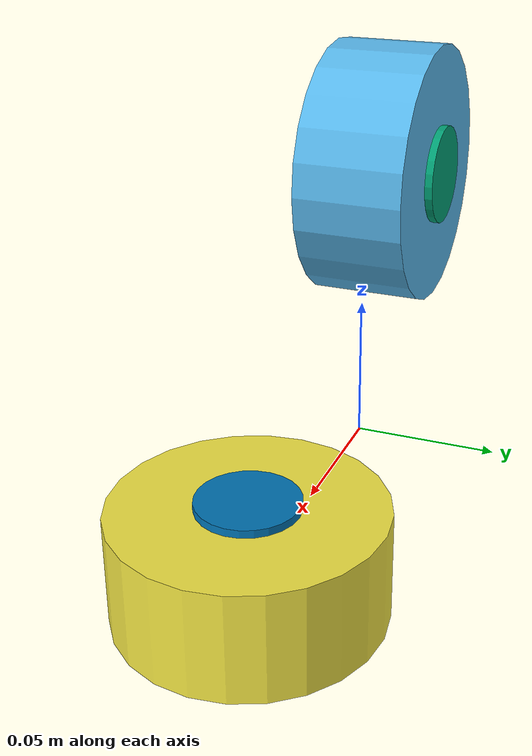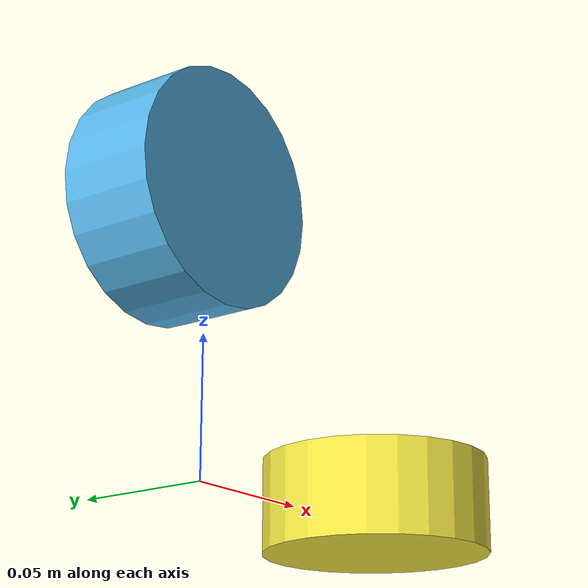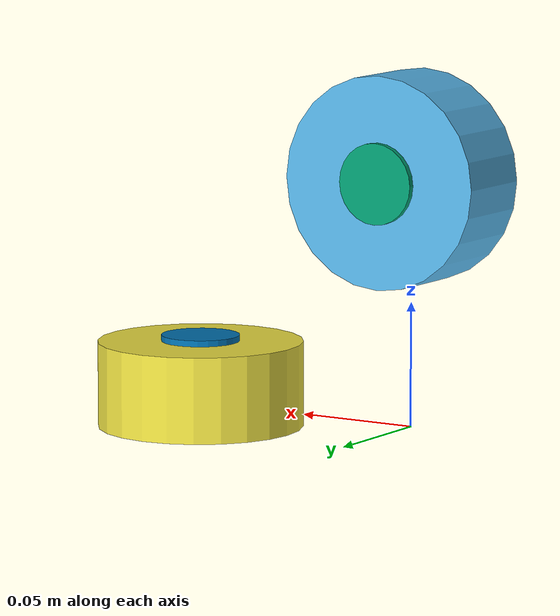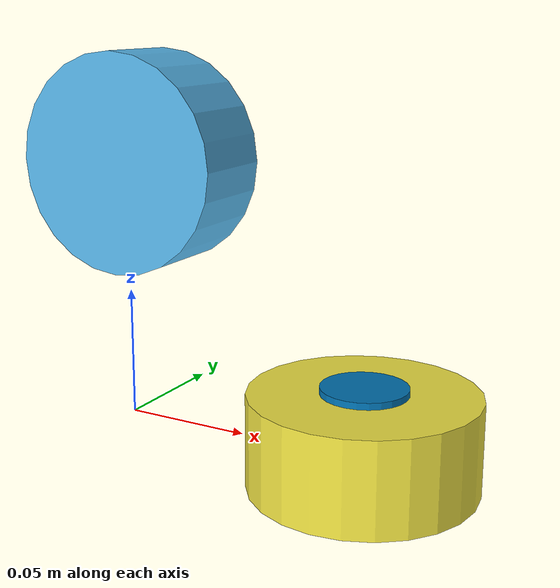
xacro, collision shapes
<?xml version="1.0"?>
<!--
MIT License
Copyright (c) 2024 Naoki Takahashi
-->
<robot xmlns:xacro="http://www.ros.org/wiki/xacro" name="cybergear_servo">
  <xacro:include filename="$(find quadro)/urdf/cybergear_servo.xacro"/>
  <link name="base_link">
  </link>
  <xacro:cybergear_servo name="quadro" parent="base_link">
    <origin rpy="0 0 0" xyz="0 0 0.1"/>
  </xacro:cybergear_servo>
</robot>

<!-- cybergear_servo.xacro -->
<!--
MIT License
Copyright (c) 2024 Naoki Takahashi
-->
<robot xmlns:xacro="http://www.ros.org/wiki/xacro">
  <xacro:macro name="cybergear_servo" params="name parent *origin">
    <joint name="${name}_FR1_base_joint" type="fixed">
      <origin rpy="${-pi/2} 0 0" xyz="0.0 0 0.1"/>
      <parent link="${parent}"/>
      <child link="${name}_FR1_link"/>
    </joint>
    <link name="${name}_FR1_link">
      <visual>
        <geometry>
          <mesh filename="package://quadro/meshes/cybergear_body.stl" scale="0.001 0.001 0.001"/>
        </geometry>
      </visual>
      <collision>
        <origin rpy="0 0 0" xyz="0 0 0.008"/>
        <geometry>
          <cylinder length="0.035" radius="0.042"/>
        </geometry>
      </collision>

    </link>
    <joint name="FR1" type="revolute">
      <origin rpy="0 0 0" xyz="0 0 0.028"/>
      <parent link="${name}_FR1_link"/>
      <child link="${name}_FR1_table_link"/>
      <axis xyz="0 0 1"/>
      <limit effort="12" velocity="30" lower="-12.565" upper="12.565"/>
    </joint>
    <link name="${name}_FR1_table_link">
      <visual>
        <origin rpy="0 0 0" xyz="0 0 -0.028"/>
        <geometry>
          <mesh filename="package://quadro/meshes/cybergear_table.stl" scale="0.001 0.001 0.001"/>
        </geometry>
      </visual>
      <collision>
        <origin rpy="0 0 0" xyz="0 0 -0.005"/>
        <geometry>
          <cylinder length="0.01" radius="0.016"/>
        </geometry>
      </collision>

    </link>

    <!-- SECOND LINK -->

    <joint name="${name}_FR2_base_joint" type="fixed">
      <origin rpy="0 0 0" xyz="0.1 0 0.0"/>
      <parent link="${parent}"/>
      <child link="${name}_FR2_link"/>
    </joint>
    <link name="${name}_FR2_link">
      <visual>
        <geometry>
          <mesh filename="package://quadro/meshes/cybergear_body.stl" scale="0.001 0.001 0.001"/>
        </geometry>
      </visual>
      <collision>
        <origin rpy="0 0 0" xyz="0 0 0.008"/>
        <geometry>
          <cylinder length="0.035" radius="0.042"/>
        </geometry>
      </collision>

    </link>
    <joint name="FR2" type="revolute">
      <origin rpy="0 0 0" xyz="0 0 0.028"/>
      <parent link="${name}_FR2_link"/>
      <child link="${name}_FR2_table_link"/>
      <axis xyz="0 0 1"/>
      <limit effort="12" velocity="30" lower="-12.565" upper="12.565"/>
    </joint>
    <link name="${name}_FR2_table_link">
      <visual>
        <origin rpy="0 0 0" xyz="0 0 -0.028"/>
        <geometry>
          <mesh filename="package://quadro/meshes/cybergear_table.stl" scale="0.001 0.001 0.001"/>
        </geometry>
      </visual>
      <collision>
        <origin rpy="0 0 0" xyz="0 0 -0.005"/>
        <geometry>
          <cylinder length="0.01" radius="0.016"/>
        </geometry>
      </collision>

    </link>

    <ros2_control name="CybergearActuators" type="actuator">
    <hardware>
      <plugin>quadro/CybergearActuator</plugin>
      <param name="can_interface">can0</param>
      <param name="timeout_sec">3.0</param>
      <param name="use_bus_time">false</param>
      <param name="interval_sec">0.5</param>
      <param name="device_id">127</param>
      <param name="primary_id">0</param>
      <param name="max_position">12.56637061</param>
      <param name="min_position">-12.56637061</param>
      <param name="max_velocity">30.0</param>
      <param name="min_velocity">-30.0</param>
      <param name="max_effort">12.0</param>
      <param name="min_effort">-12.0</param>
      <param name="max_gain_kp">500.0</param>
      <param name="min_gain_kp">0.0</param>
      <param name="max_gain_kd">5.0</param>
      <param name="min_gain_kd">0.0</param>
      <param name="max_current">23.0</param>
      <param name="min_current">-23.0</param>
      <param name="temperature_scale">0.1</param>
    </hardware>

    <joint name="FR1">
      <command_interface name="position">
      </command_interface>
      <state_interface name="position"/>
      <state_interface name="velocity"/>
    </joint>
    <joint name="FR2">
      <command_interface name="position">
      </command_interface>
      <state_interface name="position"/>
      <state_interface name="velocity"/>
    </joint>
  </ros2_control>
  </xacro:macro>
</robot>
